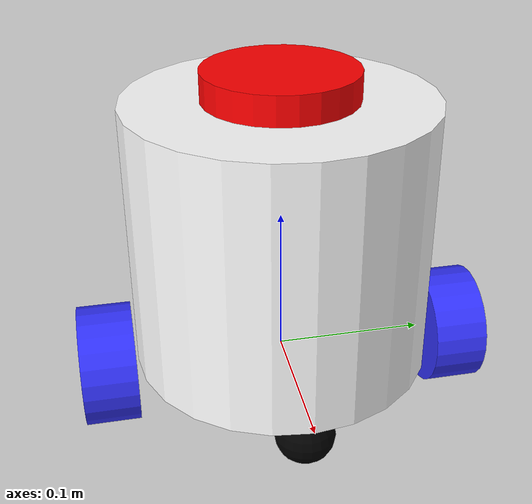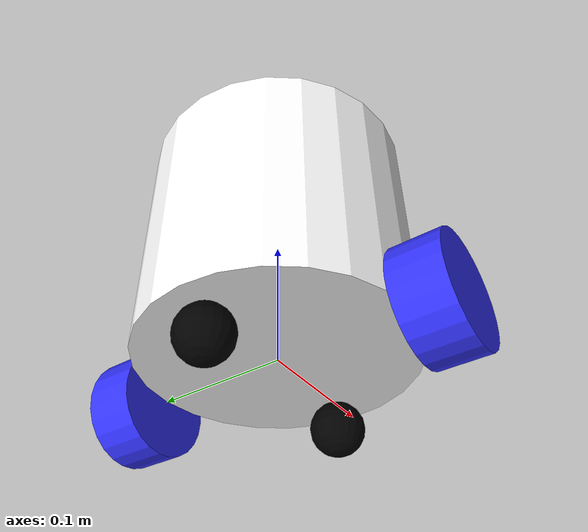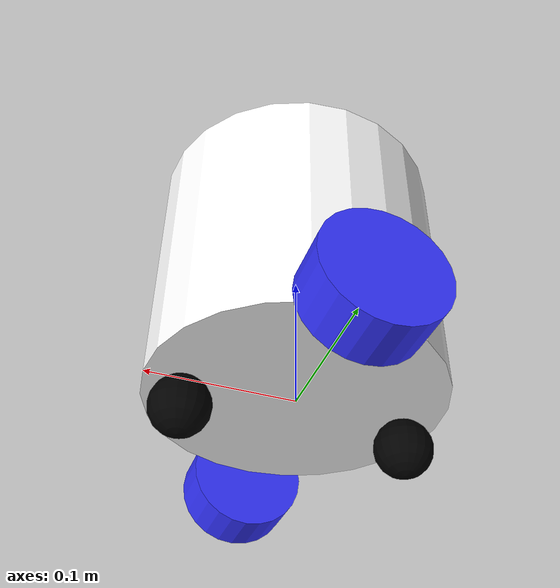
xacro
<?xml version="1.0"?>
<robot xmlns:xacro="http://www.ros.org/wiki/xacro" name="robot">

    <xacro:arg name="use_ros2_control" default="true"/>
    <xacro:arg name="sim_mode" default="false"/>

    <xacro:include filename="robot_core.xacro" />

    <!-- to fix the "world drift" when the robot moves; according
     to author josh newans ros2_control has that problem, but
     gazebo_control does not -->
     <xacro:if value="$(arg use_ros2_control)">
        <xacro:include filename="ros2_control.xacro" />
    </xacro:if>
    <xacro:unless value="$(arg use_ros2_control)">
        <xacro:include filename="gazebo_control.xacro" />
    </xacro:unless>

    <xacro:include filename="lidar.xacro" />
</robot>

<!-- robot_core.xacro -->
<robot xmlns:xacro="http://www.ros.org/wiki/xacro">
    <xacro:include filename="inertial_macros.xacro" />

    <material name="white">
        <color rgba="1 1 1 1" />
    </material>

    <material name="orange">
        <color rgba="1 0.3 0.1 1" />
    </material>

    <material name="blue">
        <color rgba="0.2 0.2 1 1" />
    </material>

    <material name="black">
        <color rgba="0 0 0 1" />
    </material>

    <material name="red">
        <color rgba="1 0 0 1" />
    </material>

    <!-- BASE LINK -->
    <link name="base_link">
    </link>

    <!-- for SLAM -->
    <joint name="base_footprint_joint" type="fixed">
        <parent link="base_link" />
        <child link="base_footprint" />
        <origin xyz="0 0 0" rpy="0 0 0" />
    </joint>

    <!-- for SLAM -->
    <link name="base_footprint">
    </link>

    <!-- CHASSIS LINK -->
    <joint name="chassis_joint" type="fixed">
        <parent link="base_link" />
        <child link="chassis" />
        <origin xyz="0 0 0" rpy="0 0 0" />
    </joint>

    <link name="chassis">
        <visual>
            <origin xyz="0 0 0.09" />
            <geometry>
                <cylinder radius="0.1" length="0.18" />
            </geometry>
            <material name="white" />
        </visual>

        <collision>
            <origin xyz="0 0 0.11" />
            <geometry>
                <cylinder radius="0.1" length="0.18" />
            </geometry>
        </collision>

        <xacro:inertial_cylinder mass="0.5" radius="0.1" length="0.18">
            <origin xyz="0 0 0.11" rpy="0 0 0" />
        </xacro:inertial_cylinder>
    </link>

    <gazebo reference="chassis">
        <material>Gazebo/White</material>
    </gazebo>

    <!-- LEFT WHEEL LINK -->

    <joint name="left_wheel_joint" type="continuous">
        <parent link="base_link" />
        <child link="left_wheel" />
        <origin xyz="0 0.12 0" rpy="-${pi/2} 0 0" />
        <axis xyz="0 0 1" />
    </joint>

    <link name="left_wheel">
        <visual>
            <geometry>
                <cylinder radius="0.04" length="0.036" />
            </geometry>
            <material name="blue" />
        </visual>

        <collision>
            <geometry>
                <sphere radius="0.04" />
            </geometry>
        </collision>

        <xacro:inertial_cylinder mass="0.1" radius="0.04" length="0.036">
            <origin xyz="0 0 0" rpy="0 0 0" />
        </xacro:inertial_cylinder>
    </link>

    <gazebo reference="left_wheel">
        <material>Gazebo/Blue</material>
    </gazebo>

    <!-- RIGHT WHEEL LINK -->

    <joint name="right_wheel_joint" type="continuous">
        <parent link="base_link" />
        <child link="right_wheel" />
        <origin xyz="0 -0.12 0" rpy="${pi/2} 0 0" />
        <axis xyz="0 0 -1" />
    </joint>

    <link name="right_wheel">
        <visual>
            <geometry>
                <cylinder radius="0.04" length="0.036" />
            </geometry>
            <material name="blue" />
        </visual>

        <collision>
            <geometry>
                <sphere radius="0.04" />
            </geometry>
        </collision>

        <xacro:inertial_cylinder mass="0.1" radius="0.04" length="0.036">
            <origin xyz="0 0 0" rpy="0 0 0" />
        </xacro:inertial_cylinder>
    </link>

    <gazebo reference="right_wheel">
        <material>Gazebo/Blue</material>
    </gazebo>

    <!-- FRONT CASTER WHEEL LINK -->

    <joint name="front_caster_wheel_joint" type="fixed">
        <parent link="chassis" />
        <child link="front_caster_wheel" />
        <origin xyz="0.075 0 -0.02" />
    </joint>

    <link name="front_caster_wheel">
        <visual>
            <origin xyz="0 0 0" />
            <geometry>
                <sphere radius="0.02" />
            </geometry>
            <material name="black" />
        </visual>

        <collision>
            <origin xyz="0 0 0" />
            <geometry>
                <sphere radius="0.02" />
            </geometry>
        </collision>

        <xacro:inertial_sphere mass="0.1" radius="0.02">
            <origin xyz="0 0 0" rpy="0 0 0" />
        </xacro:inertial_sphere>
    </link>

    <gazebo reference="front_caster_wheel">
        <material>Gazebo/Black</material>
        <mu1 value="0.0001" />
        <mu2 value="0.0001" />
    </gazebo>

    <joint name="back_caster_wheel_joint" type="fixed">
        <parent link="chassis" />
        <child link="back_caster_wheel" />
        <origin xyz="-0.075 0 -0.02" />
    </joint>

    <!-- BACK CASTER WHEEL -->

    <link name="back_caster_wheel">
        <visual>
            <origin xyz="0 0 0" />
            <geometry>
                <sphere radius="0.02" />
            </geometry>
            <material name="black" />
        </visual>

        <collision>
            <origin xyz="0 0 0" />
            <geometry>
                <sphere radius="0.02" />
            </geometry>
        </collision>

        <xacro:inertial_sphere mass="0.1" radius="0.02">
            <origin xyz="0 0 0" rpy="0 0 0" />
        </xacro:inertial_sphere>
    </link>

    <gazebo reference="back_caster_wheel">
        <material>Gazebo/Black</material>
        <mu1 value="0.0001" />
        <mu2 value="0.0001" />
    </gazebo>

</robot>

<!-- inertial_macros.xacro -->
<robot xmlns:xacro="http://www.ros.org/wiki/xacro">

    <!-- Specify some standard inertial calculations
    https://en.wikipedia.org/wiki/List_of_moments_of_inertia -->
    <!-- These make use of xacro's mathematical functionality -->

    <xacro:macro name="inertial_sphere"
        params="mass radius *origin">
        <inertial>
            <xacro:insert_block name="origin" />
            <mass value="${mass}" />
            <inertia ixx="${(2/5) * mass * (radius*radius)}" ixy="0.0" ixz="0.0"
                iyy="${(2/5) * mass * (radius*radius)}" iyz="0.0"
                izz="${(2/5) * mass * (radius*radius)}" />
        </inertial>
    </xacro:macro>

    <xacro:macro
        name="inertial_box" params="mass x y z *origin">
        <inertial>
            <xacro:insert_block name="origin" />
            <mass value="${mass}" />
            <inertia ixx="${(1/12) * mass * (y*y+z*z)}" ixy="0.0" ixz="0.0"
                iyy="${(1/12) * mass * (x*x+z*z)}" iyz="0.0"
                izz="${(1/12) * mass * (x*x+y*y)}" />
        </inertial>
    </xacro:macro>

    <xacro:macro
        name="inertial_cylinder" params="mass length radius *origin">
        <inertial>
            <xacro:insert_block name="origin" />
            <mass value="${mass}" />
            <inertia ixx="${(1/12) * mass * (3*radius*radius + length*length)}" ixy="0.0" ixz="0.0"
                iyy="${(1/12) * mass * (3*radius*radius + length*length)}" iyz="0.0"
                izz="${(1/2) * mass * (radius*radius)}" />
        </inertial>
    </xacro:macro>
</robot>

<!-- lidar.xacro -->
<robot xmlns:xacro="http://www.ros.org/wiki/xacro">

    <joint name="laser_joint" type="fixed">
        <parent link="chassis" />
        <child link="laser_frame" />
        <origin xyz="0 0 0.179" rpy="0 0 0" />
    </joint>

    <link name="laser_frame">
        <visual>
            <geometry>
                <cylinder radius="0.05" length="0.04" />
            </geometry>
            <material name="red" />
        </visual>

        <collision>
            <geometry>
                <cylinder radius="0.05" length="0.04" />
            </geometry>
        </collision>

        <xacro:inertial_cylinder mass="0.1" radius="0.05" length="0.04">
            <origin xyz="0 0 0" rpy="0 0 0" />
        </xacro:inertial_cylinder>
    </link>

    <gazebo reference="laser_frame">
        <material>Gazebo/Red</material>

        <sensor name="laser" type="ray">
            <pose>0 0 0 0 0 0</pose>
            <visualize>true</visualize>
            <update_rate>10</update_rate>

            <ray>
                <scan>
                    <horizontal>
                        <samples>360</samples>
                        <resolution>1</resolution>
                        <min_angle>-3.14</min_angle>
                        <max_angle>3.14</max_angle>
                    </horizontal>
                </scan>

                <range>
                    <min>0.3</min>
                    <max>12</max>
                    <resolution>0.01</resolution>
                </range>
            </ray>

            <plugin name="laser_controller" filename="libgazebo_ros_ray_sensor.so">
                <!-- topic to publish to -->
                <ros>
                    <argument>~/out:=scan</argument>
                </ros>

                <output_type>sensor_msgs/LaserScan</output_type>
                <frame_name>laser_frame</frame_name>
            </plugin>

        </sensor>

    </gazebo>

</robot>
